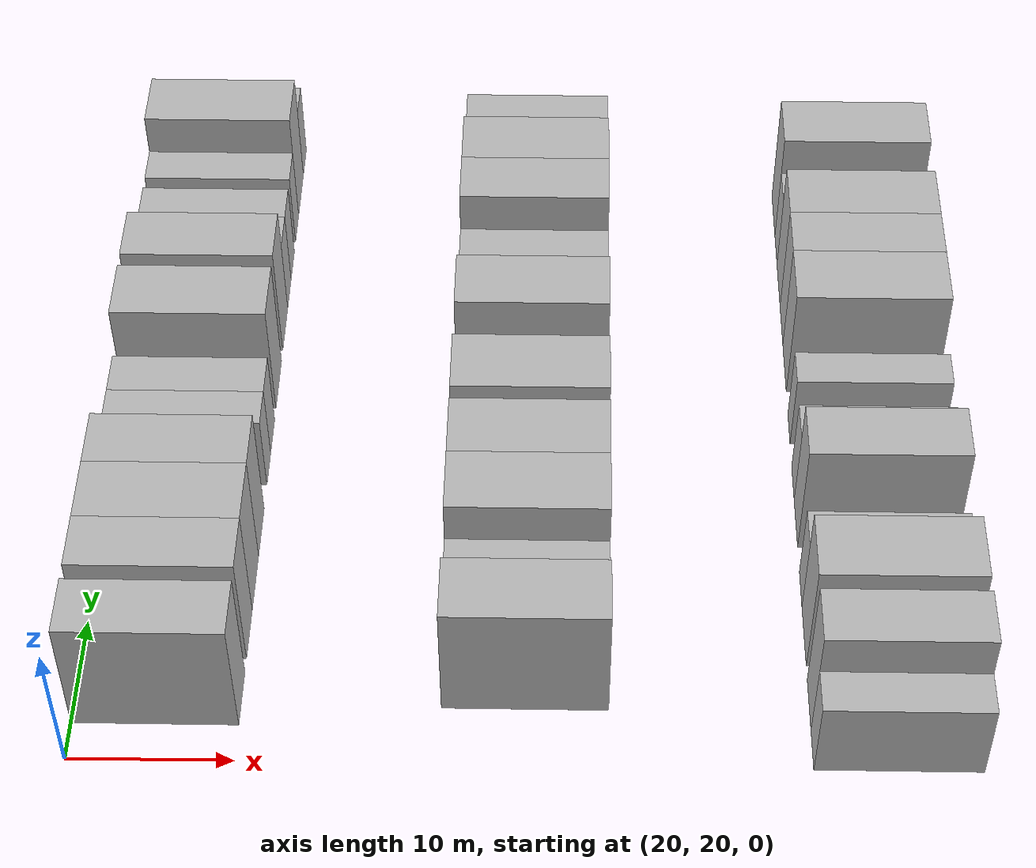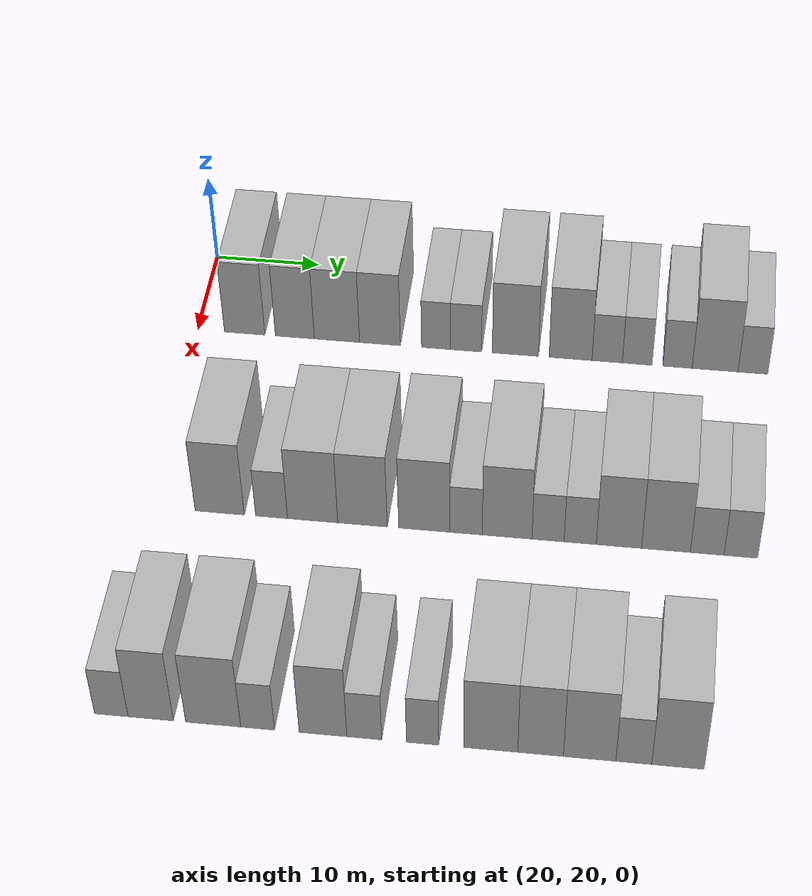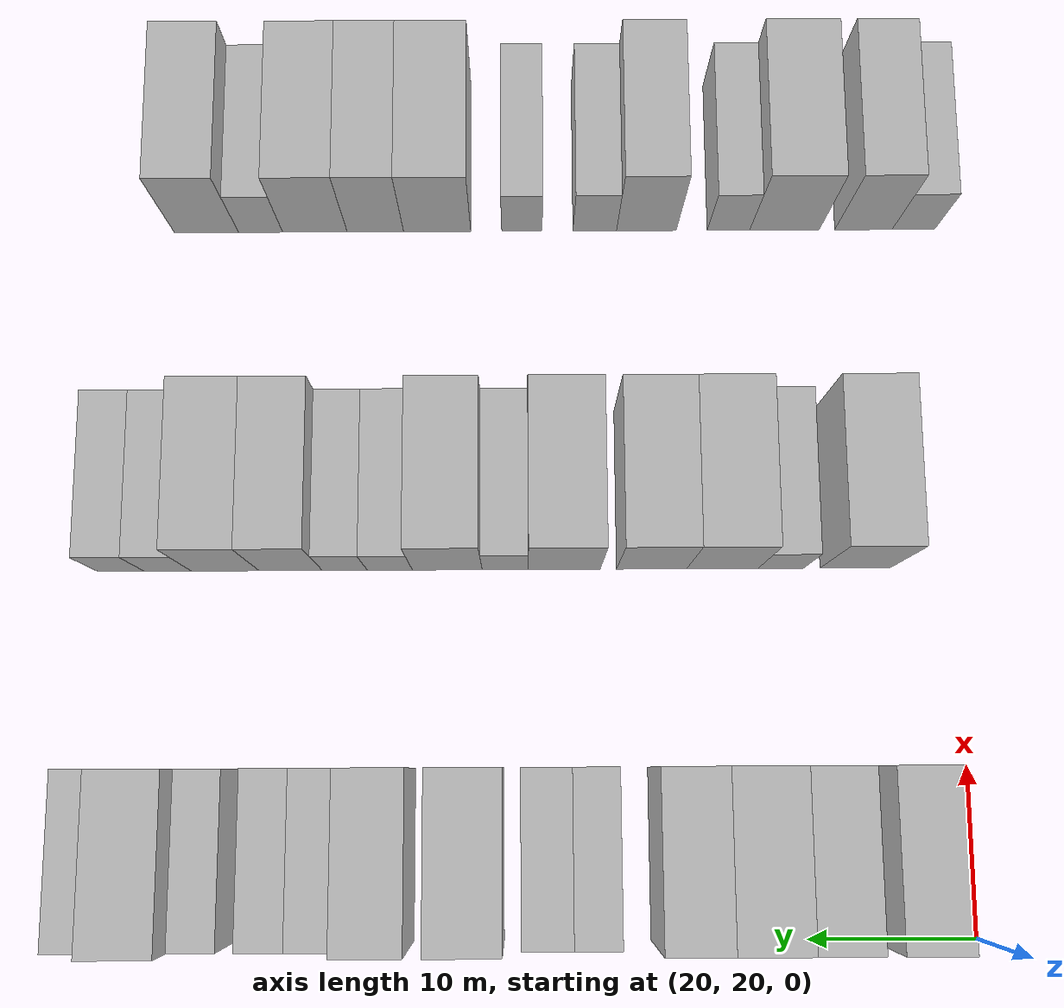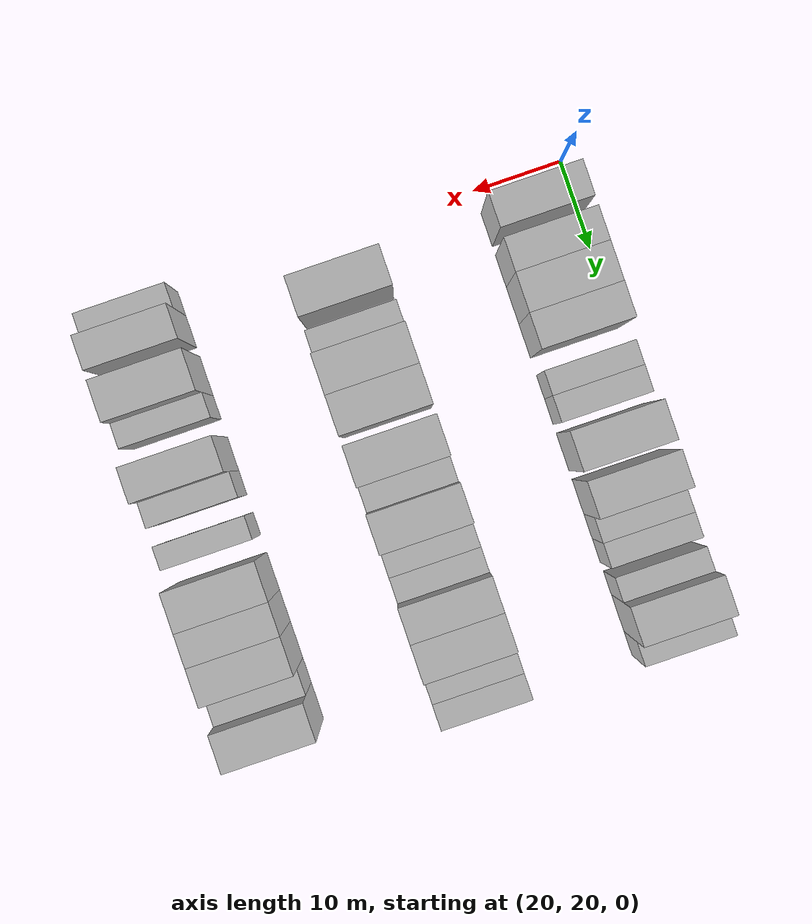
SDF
<sdf version="1.6">
 <world name="default">
  <model name="building_105">
   <static>1</static>
   <pose>25.0000 24.4600 0 0.000000 0.000000 0.000000</pose>
   <link name="link">
    <pose>0 0 4.50 0 0 0</pose>
    <collision name="collision"><geometry><box><size>10.0000 3.8385 9.0000</size></box></geometry></collision>
    <visual name="visual">
     <cast_shadows>0</cast_shadows>
     <geometry><box><size>10.0000 3.8385 9.0000</size></box></geometry>
     <material>
      <script>
       <uri>model://HANNAS_wall/materials/scripts</uri>
       <uri>model://HANNAS_wall/materials/textures</uri>
       <name>vrc/HANNAS_wall</name>
      </script>
     </material>
    </visual>
   </link>
  </model>
  <model name="building_106">
   <static>1</static>
   <pose>25.0000 29.2253 0 0.000000 0.000000 0.000000</pose>
   <link name="link">
    <pose>0 0 4.50 0 0 0</pose>
    <collision name="collision"><geometry><box><size>10.0000 3.6921 9.0000</size></box></geometry></collision>
    <visual name="visual">
     <cast_shadows>0</cast_shadows>
     <geometry><box><size>10.0000 3.6921 9.0000</size></box></geometry>
     <material>
      <script>
       <uri>model://HANNAS_wall/materials/scripts</uri>
       <uri>model://HANNAS_wall/materials/textures</uri>
       <name>vrc/HANNAS_wall</name>
      </script>
     </material>
    </visual>
   </link>
  </model>
  <model name="building_107">
   <static>1</static>
   <pose>25.0000 33.2124 0 0.000000 0.000000 0.000000</pose>
   <link name="link">
    <pose>0 0 4.50 0 0 0</pose>
    <collision name="collision"><geometry><box><size>10.0000 4.2822 9.0000</size></box></geometry></collision>
    <visual name="visual">
     <cast_shadows>0</cast_shadows>
     <geometry><box><size>10.0000 4.2822 9.0000</size></box></geometry>
     <material>
      <script>
       <uri>model://HANNAS_wall/materials/scripts</uri>
       <uri>model://HANNAS_wall/materials/textures</uri>
       <name>vrc/HANNAS_wall</name>
      </script>
     </material>
    </visual>
   </link>
  </model>
  <model name="building_108">
   <static>1</static>
   <pose>25.0000 37.2777 0 0.000000 0.000000 0.000000</pose>
   <link name="link">
    <pose>0 0 4.50 0 0 0</pose>
    <collision name="collision"><geometry><box><size>10.0000 3.8485 9.0000</size></box></geometry></collision>
    <visual name="visual">
     <cast_shadows>0</cast_shadows>
     <geometry><box><size>10.0000 3.8485 9.0000</size></box></geometry>
     <material>
      <script>
       <uri>model://HANNAS_wall/materials/scripts</uri>
       <uri>model://HANNAS_wall/materials/textures</uri>
       <name>vrc/HANNAS_wall</name>
      </script>
     </material>
    </visual>
   </link>
  </model>
  <model name="building_109">
   <static>1</static>
   <pose>25.0000 42.5548 0 0.000000 0.000000 0.000000</pose>
   <link name="link">
    <pose>0 0 3.00 0 0 0</pose>
    <collision name="collision"><geometry><box><size>10.0000 2.7056 6.0000</size></box></geometry></collision>
    <visual name="visual">
     <cast_shadows>0</cast_shadows>
     <geometry><box><size>10.0000 2.7056 6.0000</size></box></geometry>
     <material>
      <script>
       <uri>model://HANNAS_wall/materials/scripts</uri>
       <uri>model://HANNAS_wall/materials/textures</uri>
       <name>vrc/HANNAS_wall</name>
      </script>
     </material>
    </visual>
   </link>
  </model>
  <model name="building_110">
   <static>1</static>
   <pose>25.0000 45.3717 0 0.000000 0.000000 0.000000</pose>
   <link name="link">
    <pose>0 0 3.00 0 0 0</pose>
    <collision name="collision"><geometry><box><size>10.0000 2.9283 6.0000</size></box></geometry></collision>
    <visual name="visual">
     <cast_shadows>0</cast_shadows>
     <geometry><box><size>10.0000 2.9283 6.0000</size></box></geometry>
     <material>
      <script>
       <uri>model://HANNAS_wall/materials/scripts</uri>
       <uri>model://HANNAS_wall/materials/textures</uri>
       <name>vrc/HANNAS_wall</name>
      </script>
     </material>
    </visual>
   </link>
  </model>
  <model name="building_111">
   <static>1</static>
   <pose>25.0000 49.9903 0 0.000000 0.000000 0.000000</pose>
   <link name="link">
    <pose>0 0 4.50 0 0 0</pose>
    <collision name="collision"><geometry><box><size>10.0000 4.3088 9.0000</size></box></geometry></collision>
    <visual name="visual">
     <cast_shadows>0</cast_shadows>
     <geometry><box><size>10.0000 4.3088 9.0000</size></box></geometry>
     <material>
      <script>
       <uri>model://HANNAS_wall/materials/scripts</uri>
       <uri>model://HANNAS_wall/materials/textures</uri>
       <name>vrc/HANNAS_wall</name>
      </script>
     </material>
    </visual>
   </link>
  </model>
  <model name="building_112">
   <static>1</static>
   <pose>25.0000 55.1415 0 0.000000 0.000000 0.000000</pose>
   <link name="link">
    <pose>0 0 4.50 0 0 0</pose>
    <collision name="collision"><geometry><box><size>10.0000 3.9935 9.0000</size></box></geometry></collision>
    <visual name="visual">
     <cast_shadows>0</cast_shadows>
     <geometry><box><size>10.0000 3.9935 9.0000</size></box></geometry>
     <material>
      <script>
       <uri>model://HANNAS_wall/materials/scripts</uri>
       <uri>model://HANNAS_wall/materials/textures</uri>
       <name>vrc/HANNAS_wall</name>
      </script>
     </material>
    </visual>
   </link>
  </model>
  <model name="building_113">
   <static>1</static>
   <pose>25.0000 58.5464 0 0.000000 0.000000 0.000000</pose>
   <link name="link">
    <pose>0 0 3.00 0 0 0</pose>
    <collision name="collision"><geometry><box><size>10.0000 2.8163 6.0000</size></box></geometry></collision>
    <visual name="visual">
     <cast_shadows>0</cast_shadows>
     <geometry><box><size>10.0000 2.8163 6.0000</size></box></geometry>
     <material>
      <script>
       <uri>model://HANNAS_wall/materials/scripts</uri>
       <uri>model://HANNAS_wall/materials/textures</uri>
       <name>vrc/HANNAS_wall</name>
      </script>
     </material>
    </visual>
   </link>
  </model>
  <model name="building_114">
   <static>1</static>
   <pose>25.0000 61.3290 0 0.000000 0.000000 0.000000</pose>
   <link name="link">
    <pose>0 0 3.00 0 0 0</pose>
    <collision name="collision"><geometry><box><size>10.0000 2.7488 6.0000</size></box></geometry></collision>
    <visual name="visual">
     <cast_shadows>0</cast_shadows>
     <geometry><box><size>10.0000 2.7488 6.0000</size></box></geometry>
     <material>
      <script>
       <uri>model://HANNAS_wall/materials/scripts</uri>
       <uri>model://HANNAS_wall/materials/textures</uri>
       <name>vrc/HANNAS_wall</name>
      </script>
     </material>
    </visual>
   </link>
  </model>
  <model name="building_115">
   <static>1</static>
   <pose>25.0000 65.0555 0 0.000000 0.000000 0.000000</pose>
   <link name="link">
    <pose>0 0 3.00 0 0 0</pose>
    <collision name="collision"><geometry><box><size>10.0000 2.7043 6.0000</size></box></geometry></collision>
    <visual name="visual">
     <cast_shadows>0</cast_shadows>
     <geometry><box><size>10.0000 2.7043 6.0000</size></box></geometry>
     <material>
      <script>
       <uri>model://HANNAS_wall/materials/scripts</uri>
       <uri>model://HANNAS_wall/materials/textures</uri>
       <name>vrc/HANNAS_wall</name>
      </script>
     </material>
    </visual>
   </link>
  </model>
  <model name="building_116">
   <static>1</static>
   <pose>25.0000 68.5303 0 0.000000 0.000000 0.000000</pose>
   <link name="link">
    <pose>0 0 4.50 0 0 0</pose>
    <collision name="collision"><geometry><box><size>10.0000 4.2454 9.0000</size></box></geometry></collision>
    <visual name="visual">
     <cast_shadows>0</cast_shadows>
     <geometry><box><size>10.0000 4.2454 9.0000</size></box></geometry>
     <material>
      <script>
       <uri>model://HANNAS_wall/materials/scripts</uri>
       <uri>model://HANNAS_wall/materials/textures</uri>
       <name>vrc/HANNAS_wall</name>
      </script>
     </material>
    </visual>
   </link>
  </model>
  <model name="building_117">
   <static>1</static>
   <pose>25.0000 72.0196 0 0.000000 0.000000 0.000000</pose>
   <link name="link">
    <pose>0 0 3.00 0 0 0</pose>
    <collision name="collision"><geometry><box><size>10.0000 2.7332 6.0000</size></box></geometry></collision>
    <visual name="visual">
     <cast_shadows>0</cast_shadows>
     <geometry><box><size>10.0000 2.7332 6.0000</size></box></geometry>
     <material>
      <script>
       <uri>model://HANNAS_wall/materials/scripts</uri>
       <uri>model://HANNAS_wall/materials/textures</uri>
       <name>vrc/HANNAS_wall</name>
      </script>
     </material>
    </visual>
   </link>
  </model>
  <model name="building_292">
   <static>1</static>
   <pose>47.0000 26.1352 0 0.000000 0.000000 0.000000</pose>
   <link name="link">
    <pose>0 0 4.50 0 0 0</pose>
    <collision name="collision"><geometry><box><size>10.0000 4.3466 9.0000</size></box></geometry></collision>
    <visual name="visual">
     <cast_shadows>0</cast_shadows>
     <geometry><box><size>10.0000 4.3466 9.0000</size></box></geometry>
     <material>
      <script>
       <uri>model://HANNAS_wall/materials/scripts</uri>
       <uri>model://HANNAS_wall/materials/textures</uri>
       <name>vrc/HANNAS_wall</name>
      </script>
     </material>
    </visual>
   </link>
  </model>
  <model name="building_293">
   <static>1</static>
   <pose>47.0000 30.7119 0 0.000000 0.000000 0.000000</pose>
   <link name="link">
    <pose>0 0 3.00 0 0 0</pose>
    <collision name="collision"><geometry><box><size>10.0000 2.8070 6.0000</size></box></geometry></collision>
    <visual name="visual">
     <cast_shadows>0</cast_shadows>
     <geometry><box><size>10.0000 2.8070 6.0000</size></box></geometry>
     <material>
      <script>
       <uri>model://HANNAS_wall/materials/scripts</uri>
       <uri>model://HANNAS_wall/materials/textures</uri>
       <name>vrc/HANNAS_wall</name>
      </script>
     </material>
    </visual>
   </link>
  </model>
  <model name="building_294">
   <static>1</static>
   <pose>47.0000 34.3242 0 0.000000 0.000000 0.000000</pose>
   <link name="link">
    <pose>0 0 4.50 0 0 0</pose>
    <collision name="collision"><geometry><box><size>10.0000 4.4177 9.0000</size></box></geometry></collision>
    <visual name="visual">
     <cast_shadows>0</cast_shadows>
     <geometry><box><size>10.0000 4.4177 9.0000</size></box></geometry>
     <material>
      <script>
       <uri>model://HANNAS_wall/materials/scripts</uri>
       <uri>model://HANNAS_wall/materials/textures</uri>
       <name>vrc/HANNAS_wall</name>
      </script>
     </material>
    </visual>
   </link>
  </model>
  <model name="building_295">
   <static>1</static>
   <pose>47.0000 38.7011 0 0.000000 0.000000 0.000000</pose>
   <link name="link">
    <pose>0 0 4.50 0 0 0</pose>
    <collision name="collision"><geometry><box><size>10.0000 4.3360 9.0000</size></box></geometry></collision>
    <visual name="visual">
     <cast_shadows>0</cast_shadows>
     <geometry><box><size>10.0000 4.3360 9.0000</size></box></geometry>
     <material>
      <script>
       <uri>model://HANNAS_wall/materials/scripts</uri>
       <uri>model://HANNAS_wall/materials/textures</uri>
       <name>vrc/HANNAS_wall</name>
      </script>
     </material>
    </visual>
   </link>
  </model>
  <model name="building_296">
   <static>1</static>
   <pose>47.0000 44.0962 0 0.000000 0.000000 0.000000</pose>
   <link name="link">
    <pose>0 0 4.50 0 0 0</pose>
    <collision name="collision"><geometry><box><size>10.0000 4.4543 9.0000</size></box></geometry></collision>
    <visual name="visual">
     <cast_shadows>0</cast_shadows>
     <geometry><box><size>10.0000 4.4543 9.0000</size></box></geometry>
     <material>
      <script>
       <uri>model://HANNAS_wall/materials/scripts</uri>
       <uri>model://HANNAS_wall/materials/textures</uri>
       <name>vrc/HANNAS_wall</name>
      </script>
     </material>
    </visual>
   </link>
  </model>
  <model name="building_297">
   <static>1</static>
   <pose>47.0000 47.7368 0 0.000000 0.000000 0.000000</pose>
   <link name="link">
    <pose>0 0 3.00 0 0 0</pose>
    <collision name="collision"><geometry><box><size>10.0000 2.8269 6.0000</size></box></geometry></collision>
    <visual name="visual">
     <cast_shadows>0</cast_shadows>
     <geometry><box><size>10.0000 2.8269 6.0000</size></box></geometry>
     <material>
      <script>
       <uri>model://HANNAS_wall/materials/scripts</uri>
       <uri>model://HANNAS_wall/materials/textures</uri>
       <name>vrc/HANNAS_wall</name>
      </script>
     </material>
    </visual>
   </link>
  </model>
  <model name="building_298">
   <static>1</static>
   <pose>47.0000 51.3016 0 0.000000 0.000000 0.000000</pose>
   <link name="link">
    <pose>0 0 4.50 0 0 0</pose>
    <collision name="collision"><geometry><box><size>10.0000 4.3028 9.0000</size></box></geometry></collision>
    <visual name="visual">
     <cast_shadows>0</cast_shadows>
     <geometry><box><size>10.0000 4.3028 9.0000</size></box></geometry>
     <material>
      <script>
       <uri>model://HANNAS_wall/materials/scripts</uri>
       <uri>model://HANNAS_wall/materials/textures</uri>
       <name>vrc/HANNAS_wall</name>
      </script>
     </material>
    </visual>
   </link>
  </model>
  <model name="building_299">
   <static>1</static>
   <pose>47.0000 54.8426 0 0.000000 0.000000 0.000000</pose>
   <link name="link">
    <pose>0 0 3.00 0 0 0</pose>
    <collision name="collision"><geometry><box><size>10.0000 2.7792 6.0000</size></box></geometry></collision>
    <visual name="visual">
     <cast_shadows>0</cast_shadows>
     <geometry><box><size>10.0000 2.7792 6.0000</size></box></geometry>
     <material>
      <script>
       <uri>model://HANNAS_wall/materials/scripts</uri>
       <uri>model://HANNAS_wall/materials/textures</uri>
       <name>vrc/HANNAS_wall</name>
      </script>
     </material>
    </visual>
   </link>
  </model>
  <model name="building_300">
   <static>1</static>
   <pose>47.0000 57.6184 0 0.000000 0.000000 0.000000</pose>
   <link name="link">
    <pose>0 0 3.00 0 0 0</pose>
    <collision name="collision"><geometry><box><size>10.0000 2.7725 6.0000</size></box></geometry></collision>
    <visual name="visual">
     <cast_shadows>0</cast_shadows>
     <geometry><box><size>10.0000 2.7725 6.0000</size></box></geometry>
     <material>
      <script>
       <uri>model://HANNAS_wall/materials/scripts</uri>
       <uri>model://HANNAS_wall/materials/textures</uri>
       <name>vrc/HANNAS_wall</name>
      </script>
     </material>
    </visual>
   </link>
  </model>
  <model name="building_301">
   <static>1</static>
   <pose>47.0000 60.9522 0 0.000000 0.000000 0.000000</pose>
   <link name="link">
    <pose>0 0 4.50 0 0 0</pose>
    <collision name="collision"><geometry><box><size>10.0000 3.8949 9.0000</size></box></geometry></collision>
    <visual name="visual">
     <cast_shadows>0</cast_shadows>
     <geometry><box><size>10.0000 3.8949 9.0000</size></box></geometry>
     <material>
      <script>
       <uri>model://HANNAS_wall/materials/scripts</uri>
       <uri>model://HANNAS_wall/materials/textures</uri>
       <name>vrc/HANNAS_wall</name>
      </script>
     </material>
    </visual>
   </link>
  </model>
  <model name="building_302">
   <static>1</static>
   <pose>47.0000 64.9925 0 0.000000 0.000000 0.000000</pose>
   <link name="link">
    <pose>0 0 4.50 0 0 0</pose>
    <collision name="collision"><geometry><box><size>10.0000 4.1858 9.0000</size></box></geometry></collision>
    <visual name="visual">
     <cast_shadows>0</cast_shadows>
     <geometry><box><size>10.0000 4.1858 9.0000</size></box></geometry>
     <material>
      <script>
       <uri>model://HANNAS_wall/materials/scripts</uri>
       <uri>model://HANNAS_wall/materials/textures</uri>
       <name>vrc/HANNAS_wall</name>
      </script>
     </material>
    </visual>
   </link>
  </model>
  <model name="building_303">
   <static>1</static>
   <pose>47.0000 68.5328 0 0.000000 0.000000 0.000000</pose>
   <link name="link">
    <pose>0 0 3.00 0 0 0</pose>
    <collision name="collision"><geometry><box><size>10.0000 2.8948 6.0000</size></box></geometry></collision>
    <visual name="visual">
     <cast_shadows>0</cast_shadows>
     <geometry><box><size>10.0000 2.8948 6.0000</size></box></geometry>
     <material>
      <script>
       <uri>model://HANNAS_wall/materials/scripts</uri>
       <uri>model://HANNAS_wall/materials/textures</uri>
       <name>vrc/HANNAS_wall</name>
      </script>
     </material>
    </visual>
   </link>
  </model>
  <model name="building_304">
   <static>1</static>
   <pose>47.0000 71.4136 0 0.000000 0.000000 0.000000</pose>
   <link name="link">
    <pose>0 0 3.00 0 0 0</pose>
    <collision name="collision"><geometry><box><size>10.0000 2.8668 6.0000</size></box></geometry></collision>
    <visual name="visual">
     <cast_shadows>0</cast_shadows>
     <geometry><box><size>10.0000 2.8668 6.0000</size></box></geometry>
     <material>
      <script>
       <uri>model://HANNAS_wall/materials/scripts</uri>
       <uri>model://HANNAS_wall/materials/textures</uri>
       <name>vrc/HANNAS_wall</name>
      </script>
     </material>
    </visual>
   </link>
  </model>
  <model name="building_483">
   <static>1</static>
   <pose>69.0000 21.3232 0 0.000000 0.000000 0.000000</pose>
   <link name="link">
    <pose>0 0 3.00 0 0 0</pose>
    <collision name="collision"><geometry><box><size>10.0000 2.7524 6.0000</size></box></geometry></collision>
    <visual name="visual">
     <cast_shadows>0</cast_shadows>
     <geometry><box><size>10.0000 2.7524 6.0000</size></box></geometry>
     <material>
      <script>
       <uri>model://HANNAS_wall/materials/scripts</uri>
       <uri>model://HANNAS_wall/materials/textures</uri>
       <name>vrc/HANNAS_wall</name>
      </script>
     </material>
    </visual>
   </link>
  </model>
  <model name="building_484">
   <static>1</static>
   <pose>69.0000 24.5539 0 0.000000 0.000000 0.000000</pose>
   <link name="link">
    <pose>0 0 4.50 0 0 0</pose>
    <collision name="collision"><geometry><box><size>10.0000 3.7089 9.0000</size></box></geometry></collision>
    <visual name="visual">
     <cast_shadows>0</cast_shadows>
     <geometry><box><size>10.0000 3.7089 9.0000</size></box></geometry>
     <material>
      <script>
       <uri>model://HANNAS_wall/materials/scripts</uri>
       <uri>model://HANNAS_wall/materials/textures</uri>
       <name>vrc/HANNAS_wall</name>
      </script>
     </material>
    </visual>
   </link>
  </model>
  <model name="building_485">
   <static>1</static>
   <pose>69.0000 29.6540 0 0.000000 0.000000 0.000000</pose>
   <link name="link">
    <pose>0 0 4.50 0 0 0</pose>
    <collision name="collision"><geometry><box><size>10.0000 4.4913 9.0000</size></box></geometry></collision>
    <visual name="visual">
     <cast_shadows>0</cast_shadows>
     <geometry><box><size>10.0000 4.4913 9.0000</size></box></geometry>
     <material>
      <script>
       <uri>model://HANNAS_wall/materials/scripts</uri>
       <uri>model://HANNAS_wall/materials/textures</uri>
       <name>vrc/HANNAS_wall</name>
      </script>
     </material>
    </visual>
   </link>
  </model>
  <model name="building_486">
   <static>1</static>
   <pose>69.0000 33.2737 0 0.000000 0.000000 0.000000</pose>
   <link name="link">
    <pose>0 0 3.00 0 0 0</pose>
    <collision name="collision"><geometry><box><size>10.0000 2.7481 6.0000</size></box></geometry></collision>
    <visual name="visual">
     <cast_shadows>0</cast_shadows>
     <geometry><box><size>10.0000 2.7481 6.0000</size></box></geometry>
     <material>
      <script>
       <uri>model://HANNAS_wall/materials/scripts</uri>
       <uri>model://HANNAS_wall/materials/textures</uri>
       <name>vrc/HANNAS_wall</name>
      </script>
     </material>
    </visual>
   </link>
  </model>
  <model name="building_487">
   <static>1</static>
   <pose>69.0000 38.5764 0 0.000000 0.000000 0.000000</pose>
   <link name="link">
    <pose>0 0 4.50 0 0 0</pose>
    <collision name="collision"><geometry><box><size>10.0000 3.8573 9.0000</size></box></geometry></collision>
    <visual name="visual">
     <cast_shadows>0</cast_shadows>
     <geometry><box><size>10.0000 3.8573 9.0000</size></box></geometry>
     <material>
      <script>
       <uri>model://HANNAS_wall/materials/scripts</uri>
       <uri>model://HANNAS_wall/materials/textures</uri>
       <name>vrc/HANNAS_wall</name>
      </script>
     </material>
    </visual>
   </link>
  </model>
  <model name="building_488">
   <static>1</static>
   <pose>69.0000 41.9110 0 0.000000 0.000000 0.000000</pose>
   <link name="link">
    <pose>0 0 3.00 0 0 0</pose>
    <collision name="collision"><geometry><box><size>10.0000 2.8119 6.0000</size></box></geometry></collision>
    <visual name="visual">
     <cast_shadows>0</cast_shadows>
     <geometry><box><size>10.0000 2.8119 6.0000</size></box></geometry>
     <material>
      <script>
       <uri>model://HANNAS_wall/materials/scripts</uri>
       <uri>model://HANNAS_wall/materials/textures</uri>
       <name>vrc/HANNAS_wall</name>
      </script>
     </material>
    </visual>
   </link>
  </model>
  <model name="building_489">
   <static>1</static>
   <pose>69.0000 46.6106 0 0.000000 0.000000 0.000000</pose>
   <link name="link">
    <pose>0 0 3.00 0 0 0</pose>
    <collision name="collision"><geometry><box><size>10.0000 2.5873 6.0000</size></box></geometry></collision>
    <visual name="visual">
     <cast_shadows>0</cast_shadows>
     <geometry><box><size>10.0000 2.5873 6.0000</size></box></geometry>
     <material>
      <script>
       <uri>model://HANNAS_wall/materials/scripts</uri>
       <uri>model://HANNAS_wall/materials/textures</uri>
       <name>vrc/HANNAS_wall</name>
      </script>
     </material>
    </visual>
   </link>
  </model>
  <model name="building_490">
   <static>1</static>
   <pose>69.0000 52.0711 0 0.000000 0.000000 0.000000</pose>
   <link name="link">
    <pose>0 0 4.50 0 0 0</pose>
    <collision name="collision"><geometry><box><size>10.0000 4.3338 9.0000</size></box></geometry></collision>
    <visual name="visual">
     <cast_shadows>0</cast_shadows>
     <geometry><box><size>10.0000 4.3338 9.0000</size></box></geometry>
     <material>
      <script>
       <uri>model://HANNAS_wall/materials/scripts</uri>
       <uri>model://HANNAS_wall/materials/textures</uri>
       <name>vrc/HANNAS_wall</name>
      </script>
     </material>
    </visual>
   </link>
  </model>
  <model name="building_491">
   <static>1</static>
   <pose>69.0000 56.0588 0 0.000000 0.000000 0.000000</pose>
   <link name="link">
    <pose>0 0 4.50 0 0 0</pose>
    <collision name="collision"><geometry><box><size>10.0000 3.6416 9.0000</size></box></geometry></collision>
    <visual name="visual">
     <cast_shadows>0</cast_shadows>
     <geometry><box><size>10.0000 3.6416 9.0000</size></box></geometry>
     <material>
      <script>
       <uri>model://HANNAS_wall/materials/scripts</uri>
       <uri>model://HANNAS_wall/materials/textures</uri>
       <name>vrc/HANNAS_wall</name>
      </script>
     </material>
    </visual>
   </link>
  </model>
  <model name="building_492">
   <static>1</static>
   <pose>69.0000 59.9606 0 0.000000 0.000000 0.000000</pose>
   <link name="link">
    <pose>0 0 4.50 0 0 0</pose>
    <collision name="collision"><geometry><box><size>10.0000 4.1620 9.0000</size></box></geometry></collision>
    <visual name="visual">
     <cast_shadows>0</cast_shadows>
     <geometry><box><size>10.0000 4.1620 9.0000</size></box></geometry>
     <material>
      <script>
       <uri>model://HANNAS_wall/materials/scripts</uri>
       <uri>model://HANNAS_wall/materials/textures</uri>
       <name>vrc/HANNAS_wall</name>
      </script>
     </material>
    </visual>
   </link>
  </model>
  <model name="building_493">
   <static>1</static>
   <pose>69.0000 63.4613 0 0.000000 0.000000 0.000000</pose>
   <link name="link">
    <pose>0 0 3.00 0 0 0</pose>
    <collision name="collision"><geometry><box><size>10.0000 2.8393 6.0000</size></box></geometry></collision>
    <visual name="visual">
     <cast_shadows>0</cast_shadows>
     <geometry><box><size>10.0000 2.8393 6.0000</size></box></geometry>
     <material>
      <script>
       <uri>model://HANNAS_wall/materials/scripts</uri>
       <uri>model://HANNAS_wall/materials/textures</uri>
       <name>vrc/HANNAS_wall</name>
      </script>
     </material>
    </visual>
   </link>
  </model>
  <model name="building_494">
   <static>1</static>
   <pose>69.0000 66.9531 0 0.000000 0.000000 0.000000</pose>
   <link name="link">
    <pose>0 0 4.50 0 0 0</pose>
    <collision name="collision"><geometry><box><size>10.0000 4.1444 9.0000</size></box></geometry></collision>
    <visual name="visual">
     <cast_shadows>0</cast_shadows>
     <geometry><box><size>10.0000 4.1444 9.0000</size></box></geometry>
     <material>
      <script>
       <uri>model://HANNAS_wall/materials/scripts</uri>
       <uri>model://HANNAS_wall/materials/textures</uri>
       <name>vrc/HANNAS_wall</name>
      </script>
     </material>
    </visual>
   </link>
  </model>
 </world>
</sdf>
